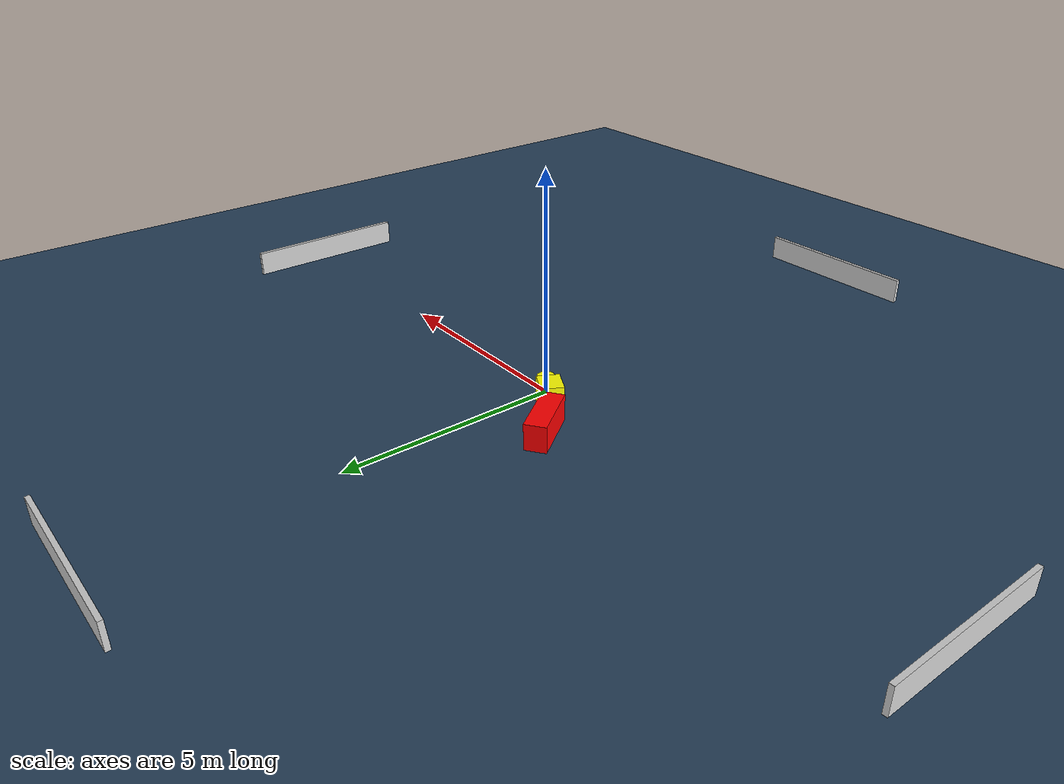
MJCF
<?xml version="1.0" ?>
<mujoco model="generated_environment">
  <option timestep="0.01" integrator="RK4" cone="elliptic"/>
  <default>
    <geom density="1"/>
  </default>
  <asset>
    <texture builtin="gradient" height="3072" name="skybox" rgb1="0.3 0.5 0.7" rgb2="0 0 0" type="skybox" width="512"/>
    <texture builtin="checker" height="300" name="groundplane" rgb1="0.2 0.3 0.4" rgb2="0.1 0.2 0.3" type="2d" width="300"/>
    <material name="groundplane" reflectance="0.2" texrepeat="5 5" texture="groundplane"/>
  </asset>
  <worldbody>
    <light dir="0 0 -1" directional="true" pos="0 0 1.5"/>
    <geom condim="3" friction="0.5 0.005 0.001" material="groundplane" name="floor" pos="0 0 0" size="0 0 0.05" type="plane"/>
    <body name="walls">
      <geom name="wall_1" condim="4" pos="-10.0 0.0 0.3" rgba="0.800000011920929 0.800000011920929 0.800000011920929 1.0" size="0.05 2.0 0.3" type="box"/>
      <geom name="wall_2" condim="4" pos="10.0 0.0 0.3" rgba="0.800000011920929 0.800000011920929 0.800000011920929 1.0" size="0.05 2.0 0.3" type="box"/>
      <geom name="wall_3" condim="4" pos="0.0 -10.0 0.3" rgba="0.800000011920929 0.800000011920929 0.800000011920929 1.0" size="2.0 0.05 0.3" type="box"/>
      <geom name="wall_4" condim="4" pos="0.0 10.0 0.3" rgba="0.800000011920929 0.800000011920929 0.800000011920929 1.0" size="2.0 0.05 0.3" type="box"/>
    </body>
    <body name="robot">
      <joint name="joint_x" type="slide" pos="0 0 0" axis="1 0 0"/>
      <joint name="joint_y" type="slide" pos="0 0 0" axis="0 1 0"/>
      <geom name="robot" type="cylinder" pos="0.0 0.0 0.2" size="0.2 0.2 0.0" mass="5.0" friction="1.0 0.005 0.0001" condim="4" rgba="1.0 1.0 0.0 1.0"/>
    </body>
    <body name="obstacle_1_movable">
      <geom name="obstacle_1_movable" condim="4" pos="-0.5374170437336202 0.3234710478158393 0.3" euler="0 0 331.2131413925263" friction="0.0 0.005 0.001" rgba="1.0 1.0 0.0 1.0" size="0.2906998070459695 0.2559814353581094 0.3" type="box" mass="0.1"/>
      <joint type="free"/>
    </body>
    <body name="obstacle_2_static">
      <geom name="obstacle_2_static" condim="4" pos="-1.3429714447895387 1.1181608325885326 0.3" euler="0 0 35.11215780312774" friction="0.0 0.005 0.001" rgba="1.0 0.0 0.0 1.0" size="0.24189089801994113 0.6747803927608449 0.3" type="box"/>
    </body>
  </worldbody>
  <actuator>
    <motor name="actuator_x" joint="joint_x" gear="1" ctrlrange="-1 1"/>
    <motor name="actuator_y" joint="joint_y" gear="1" ctrlrange="-1 1"/>
  </actuator>
</mujoco>
